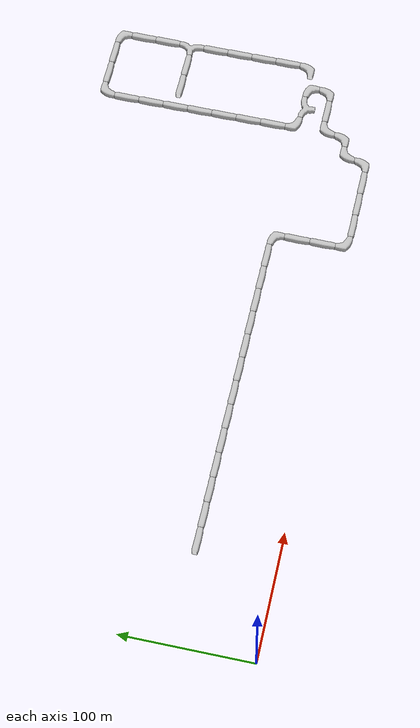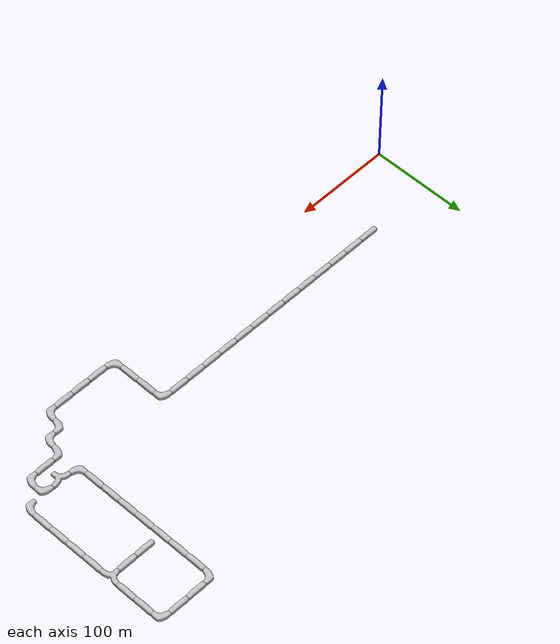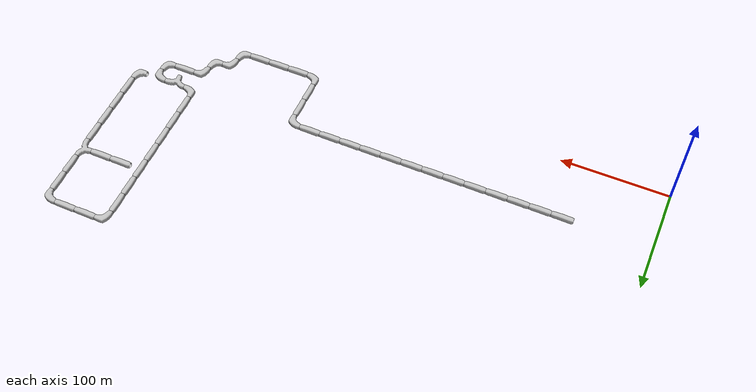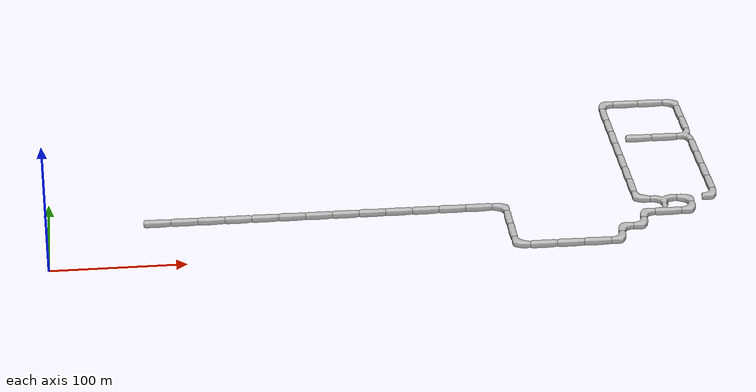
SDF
<sdf version="1.6">
 <world name="cave_8000">
  <include>
   <static>true</static>
   <name>cave_4_3</name>
   <pose>80 60 0 0 0 1.5707963267948966</pose>
   <uri>model://cave_straight_20m</uri>
  </include>
  <include>
   <static>true</static>
   <name>cave_5_3</name>
   <pose>100 60 0 0 0 1.5707963267948966</pose>
   <uri>model://cave_straight_20m</uri>
  </include>
  <include>
   <static>true</static>
   <name>cave_6_3</name>
   <pose>120 60 0 0 0 1.5707963267948966</pose>
   <uri>model://cave_straight_20m</uri>
  </include>
  <include>
   <static>true</static>
   <name>cave_7_3</name>
   <pose>140 60 0 0 0 1.5707963267948966</pose>
   <uri>model://cave_straight_20m</uri>
  </include>
  <include>
   <static>true</static>
   <name>cave_8_3</name>
   <pose>160 60 0 0 0 1.5707963267948966</pose>
   <uri>model://cave_straight_20m</uri>
  </include>
  <include>
   <static>true</static>
   <name>cave_9_3</name>
   <pose>180 60 0 0 0 1.5707963267948966</pose>
   <uri>model://cave_straight_20m</uri>
  </include>
  <include>
   <static>true</static>
   <name>cave_10_3</name>
   <pose>200 60 0 0 0 1.5707963267948966</pose>
   <uri>model://cave_straight_20m</uri>
  </include>
  <include>
   <static>true</static>
   <name>cave_11_3</name>
   <pose>220 60 0 0 0 1.5707963267948966</pose>
   <uri>model://cave_straight_20m</uri>
  </include>
  <include>
   <static>true</static>
   <name>cave_12_3</name>
   <pose>240 60 0 0 0 1.5707963267948966</pose>
   <uri>model://cave_straight_20m</uri>
  </include>
  <include>
   <static>true</static>
   <name>cave_13_3</name>
   <pose>260 60 0 0 0 1.5707963267948966</pose>
   <uri>model://cave_straight_20m</uri>
  </include>
  <include>
   <static>true</static>
   <name>cave_14_3</name>
   <pose>280 60 0 0 0 1.5707963267948966</pose>
   <uri>model://cave_straight_20m</uri>
  </include>
  <include>
   <static>true</static>
   <name>cave_15_3</name>
   <pose>300 60 0 0 0 1.5707963267948966</pose>
   <uri>model://cave_straight_20m</uri>
  </include>
  <include>
   <static>true</static>
   <name>cave_16_3</name>
   <pose>320 60 0 0 0 1.5707963267948966</pose>
   <uri>model://cave_straight_20m</uri>
  </include>
  <include>
   <static>true</static>
   <name>cave_17_3</name>
   <pose>340 60 0 0 0 3.141592653589793</pose>
   <uri>model://cave_L_20m</uri>
  </include>
  <include>
   <static>true</static>
   <name>cave_17_2</name>
   <pose>340 40 0 0 0 0.0</pose>
   <uri>model://cave_straight_20m</uri>
  </include>
  <include>
   <static>true</static>
   <name>cave_17_1</name>
   <pose>340 20 0 0 0 0.0</pose>
   <uri>model://cave_straight_20m</uri>
  </include>
  <include>
   <static>true</static>
   <name>cave_17_0</name>
   <pose>340 0 0 0 0 0.0</pose>
   <uri>model://cave_L_20m</uri>
  </include>
  <include>
   <static>true</static>
   <name>cave_18_0</name>
   <pose>360 0 0 0 0 1.5707963267948966</pose>
   <uri>model://cave_straight_20m</uri>
  </include>
  <include>
   <static>true</static>
   <name>cave_19_0</name>
   <pose>380 0 0 0 0 1.5707963267948966</pose>
   <uri>model://cave_straight_20m</uri>
  </include>
  <include>
   <static>true</static>
   <name>cave_20_0</name>
   <pose>400 0 0 0 0 1.5707963267948966</pose>
   <uri>model://cave_straight_20m</uri>
  </include>
  <include>
   <static>true</static>
   <name>cave_21_0</name>
   <pose>420 0 0 0 0 1.5707963267948966</pose>
   <uri>model://cave_L_20m</uri>
  </include>
  <include>
   <static>true</static>
   <name>cave_21_1</name>
   <pose>420 20 0 0 0 -1.5707963267948966</pose>
   <uri>model://cave_L_20m</uri>
  </include>
  <include>
   <static>true</static>
   <name>cave_22_1</name>
   <pose>440 20 0 0 0 1.5707963267948966</pose>
   <uri>model://cave_L_20m</uri>
  </include>
  <include>
   <static>true</static>
   <name>cave_22_2</name>
   <pose>440 40 0 0 0 -1.5707963267948966</pose>
   <uri>model://cave_L_20m</uri>
  </include>
  <include>
   <static>true</static>
   <name>cave_23_2</name>
   <pose>460 40 0 0 0 1.5707963267948966</pose>
   <uri>model://cave_straight_20m</uri>
  </include>
  <include>
   <static>true</static>
   <name>cave_24_2</name>
   <pose>480 40 0 0 0 1.5707963267948966</pose>
   <uri>model://cave_L_20m</uri>
  </include>
  <include>
   <static>true</static>
   <name>cave_24_3</name>
   <pose>480 60 0 0 0 3.141592653589793</pose>
   <uri>model://cave_L_20m</uri>
  </include>
  <include>
   <static>true</static>
   <name>cave_23_3</name>
   <pose>460 60 0 0 0 3.141592653589793</pose>
   <uri>model://cave_3way_20m</uri>
  </include>
  <include>
   <static>true</static>
   <name>cave_22_3</name>
   <pose>440 60 0 0 0 0.0</pose>
   <uri>model://cave_L_20m</uri>
  </include>
  <include>
   <static>true</static>
   <name>cave_22_4</name>
   <pose>440 80 0 0 0 0.0</pose>
   <uri>model://cave_straight_20m</uri>
  </include>
  <include>
   <static>true</static>
   <name>cave_22_5</name>
   <pose>440 100 0 0 0 0.0</pose>
   <uri>model://cave_straight_20m</uri>
  </include>
  <include>
   <static>true</static>
   <name>cave_22_6</name>
   <pose>440 120 0 0 0 0.0</pose>
   <uri>model://cave_straight_20m</uri>
  </include>
  <include>
   <static>true</static>
   <name>cave_22_7</name>
   <pose>440 140 0 0 0 0.0</pose>
   <uri>model://cave_straight_20m</uri>
  </include>
  <include>
   <static>true</static>
   <name>cave_22_8</name>
   <pose>440 160 0 0 0 0.0</pose>
   <uri>model://cave_straight_20m</uri>
  </include>
  <include>
   <static>true</static>
   <name>cave_22_9</name>
   <pose>440 180 0 0 0 0.0</pose>
   <uri>model://cave_straight_20m</uri>
  </include>
  <include>
   <static>true</static>
   <name>cave_22_10</name>
   <pose>440 200 0 0 0 0.0</pose>
   <uri>model://cave_straight_20m</uri>
  </include>
  <include>
   <static>true</static>
   <name>cave_22_11</name>
   <pose>440 220 0 0 0 -1.5707963267948966</pose>
   <uri>model://cave_L_20m</uri>
  </include>
  <include>
   <static>true</static>
   <name>cave_23_11</name>
   <pose>460 220 0 0 0 1.5707963267948966</pose>
   <uri>model://cave_straight_20m</uri>
  </include>
  <include>
   <static>true</static>
   <name>cave_24_11</name>
   <pose>480 220 0 0 0 1.5707963267948966</pose>
   <uri>model://cave_straight_20m</uri>
  </include>
  <include>
   <static>true</static>
   <name>cave_25_11</name>
   <pose>500 220 0 0 0 3.141592653589793</pose>
   <uri>model://cave_L_20m</uri>
  </include>
  <include>
   <static>true</static>
   <name>cave_25_10</name>
   <pose>500 200 0 0 0 0.0</pose>
   <uri>model://cave_straight_20m</uri>
  </include>
  <include>
   <static>true</static>
   <name>cave_25_9</name>
   <pose>500 180 0 0 0 0.0</pose>
   <uri>model://cave_straight_20m</uri>
  </include>
  <include>
   <static>true</static>
   <name>cave_25_8</name>
   <pose>500 160 0 0 0 1.5707963267948966</pose>
   <uri>model://cave_3way_20m</uri>
  </include>
  <include>
   <static>true</static>
   <name>cave_25_7</name>
   <pose>500 140 0 0 0 0.0</pose>
   <uri>model://cave_straight_20m</uri>
  </include>
  <include>
   <static>true</static>
   <name>cave_25_6</name>
   <pose>500 120 0 0 0 0.0</pose>
   <uri>model://cave_straight_20m</uri>
  </include>
  <include>
   <static>true</static>
   <name>cave_25_5</name>
   <pose>500 100 0 0 0 0.0</pose>
   <uri>model://cave_straight_20m</uri>
  </include>
  <include>
   <static>true</static>
   <name>cave_25_4</name>
   <pose>500 80 0 0 0 0.0</pose>
   <uri>model://cave_straight_20m</uri>
  </include>
  <include>
   <static>true</static>
   <name>cave_25_3</name>
   <pose>500 60 0 0 0 1.5707963267948966</pose>
   <uri>model://cave_L_20m</uri>
  </include>
  <include>
   <static>true</static>
   <name>cave_24_8</name>
   <pose>480 160 0 0 0 1.5707963267948966</pose>
   <uri>model://cave_straight_20m</uri>
  </include>
  <include>
   <static>true</static>
   <name>cave_23_8</name>
   <pose>460 160 0 0 0 1.5707963267948966</pose>
   <uri>model://cave_straight_20m</uri>
  </include>
 </world>
</sdf>
